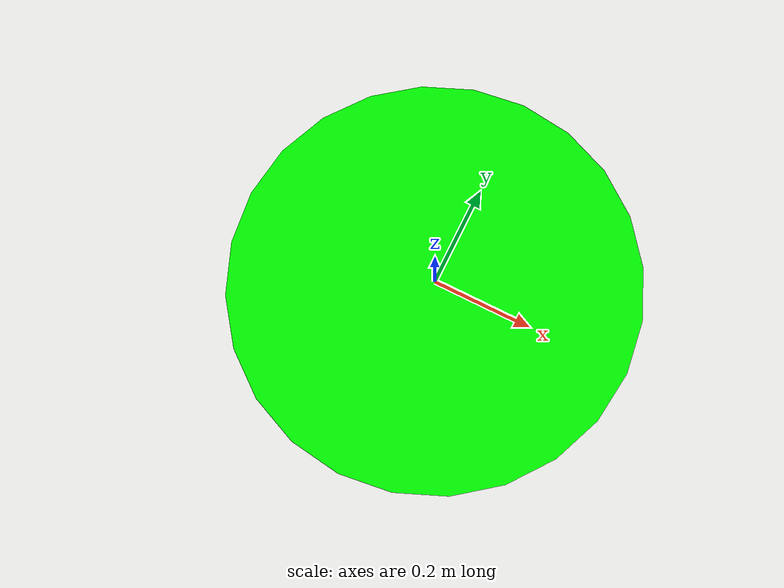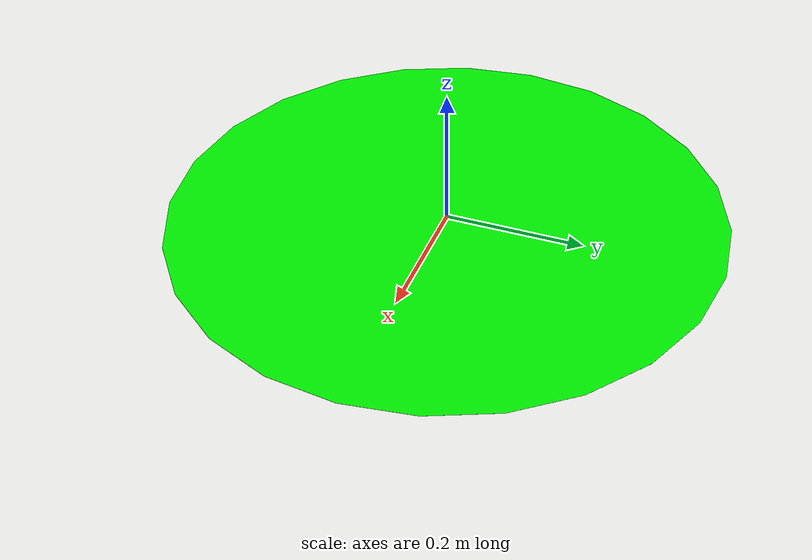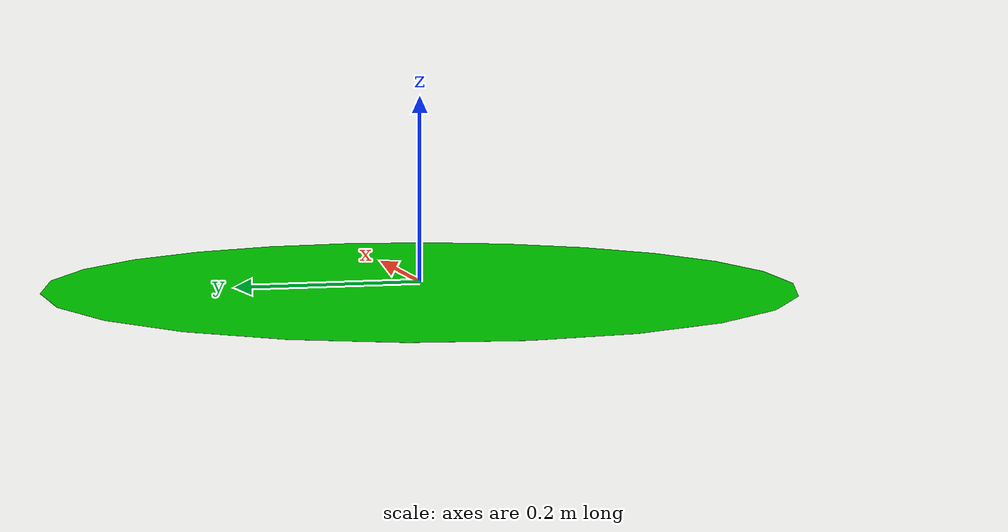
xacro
<?xml version="1.0"?>
<robot xmlns:xacro="http://www.ros.org/wiki/xacro" name="tgt_point_maker">

    <xacro:arg name="car_name" default="zxcar" />
    <xacro:arg name="color_r" default="0.5" />
    <xacro:arg name="color_g" default="0.5" />
    <xacro:arg name="color_b" default="0.5" />
    <xacro:arg name="color_a" default="1.0" />

    <!-- 定义圆柱体连杆 -->
    <link name="tgt_point_link">
        <!-- 视觉属性 -->
        <visual>
            <geometry>
                <!-- 定义为圆柱体，半径 0.5，高度 1.0 -->
                <cylinder radius="0.4" length="0.0001"/>
            </geometry>
            <!-- 材质颜色为绿色 -->
            <material name="green">
                <color rgba="0 1 0 1"/>
            </material>
        </visual>
        <!-- 惯性属性 -->
        <inertial>
            <!-- 质量为 1.0 -->
            <mass value="1.0"/>
            <!-- 惯性矩阵元素 -->
            <inertia ixx="0.1" ixy="0.0" ixz="0.0" iyy="0.1" iyz="0.0" izz="0.05"/>
        </inertial>
    </link>

    <gazebo reference='tgt_point_link'>
        <visual>
            <plugin name="set_model_color_plugin" filename="libset_model_color_plugin.so">
                <robotNamespace>$(arg car_name)</robotNamespace>
                <serviceName>tgtpoint_color</serviceName>
                <color>$(arg color_r) $(arg color_g) $(arg color_b) $(arg color_a)</color>
            </plugin>
        </visual>
		<static>true</static>
		 <turnGravityOff>1</turnGravityOff>  <!-- 禁用重力 -->
    </gazebo>

</robot>
